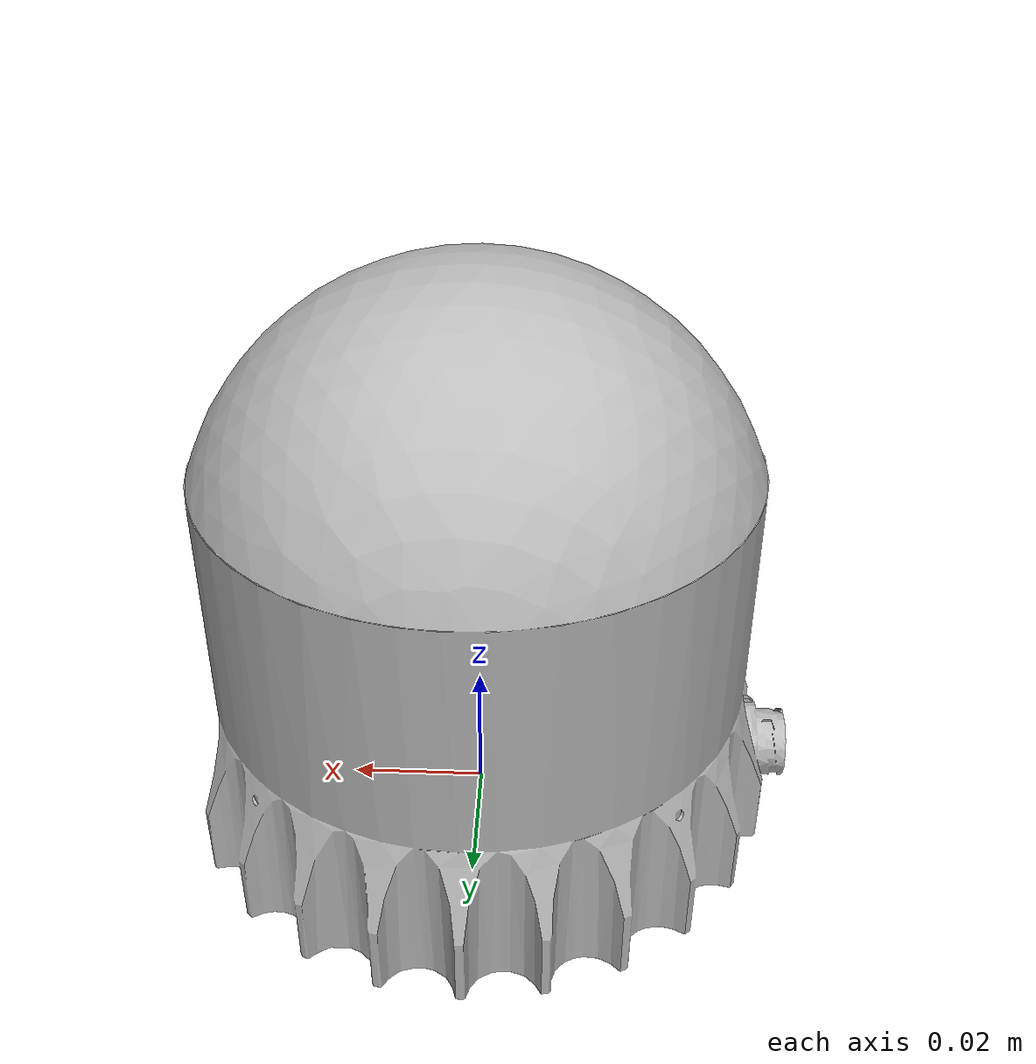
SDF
<?xml version="1.0" ?>
<sdf version='1.6'>
  <model name='osdome'>
    <link name='osdome_sensor'>
      <pose frame=''>0 0 0 0 0 0</pose>
      <inertial>
        <pose frame=''>0 0 0.04 0 -0 0</pose>
        <mass>0.47</mass>
        <inertia>
          <ixx>0.00030456</ixx>
          <ixy>0</ixy>
          <ixz>0</ixz>
          <iyy>0.00030456</iyy>
          <iyz>0</iyz>
          <izz>0.000437</izz>
        </inertia>
      </inertial>
      <collision name='osdome_sensor_fixed_joint_lump__base_collision_collision'>
        <pose frame=''>0 0 0.042635 0 -0 0</pose>
        <geometry>
          <cylinder>
            <length>0.08527</length>
            <radius>0.03600</radius>
          </cylinder>
        </geometry>
      </collision>
      <visual name='osdome_sensor_fixed_joint_lump__base_visual_visual'>
        <pose frame=''>0 0 0 0 0 0</pose>
        <geometry>
          <mesh>
            <scale>1 1 1</scale>
            <uri>model://osdome_64/meshes/osdome_64.dae</uri>
          </mesh>
        </geometry>
      </visual>
      <velocity_decay/>
      <gravity>1</gravity>
      <velocity_decay/>
      <sensor name='osdome_sensor-OSDome-64' type='gpu_ray'>
        <visualize>0</visualize>
        <update_rate>10</update_rate>
        <ray>
          <scan>
            <horizontal>
              <samples>512</samples>
              <resolution>1</resolution>
              <min_angle>-3.14159</min_angle>
              <max_angle>3.14159</max_angle>
            </horizontal>
            <vertical>
              <samples>64</samples>
              <resolution>1</resolution>
              <min_angle>0</min_angle>
              <max_angle>1.4835</max_angle>
            </vertical>
          </scan>
          <range>
            <min>0.0001</min>
            <max>40</max>
            <resolution>0.01</resolution>
          </range>
        </ray>
        <plugin name='gazebo_ros_laser_controller' filename='libgazebo_ros_ouster_gpu_laser.so'>
          <topicName>/osdome_cloud_node/points</topicName>
          <frameName>osdome_lidar</frameName>
          <min_range>0.0001</min_range>
          <max_range>40.0</max_range>
          <gaussianNoise>0.008</gaussianNoise>
        </plugin>
        <pose frame=''>0 0 0.08527 0 -0 0</pose>
      </sensor>
    </link>
    <static>0</static>
    <plugin name='imu_controller' filename='libhector_gazebo_ros_imu.so'>
      <robotNamespace>/</robotNamespace>
      <updateRate>100.0</updateRate>
      <topicName>/osdome_cloud_node/imu</topicName>
      <accelDrift>0.005 0.005 0.005</accelDrift>
      <accelGaussianNoise>0.005 0.005 0.005</accelGaussianNoise>
      <rateDrift>0.005 0.005 0.005</rateDrift>
      <rateGaussianNoise>0.005 0.005 0.005</rateGaussianNoise>
      <headingDrift>0.005</headingDrift>
      <headingGaussianNoise>0.005</headingGaussianNoise>
      <bodyName>osdome_sensor</bodyName>
      <xyzOffset>-0.006253 0.011775 -0.007645</xyzOffset>
      <rpyOffset>0 -0 0</rpyOffset>
    </plugin>
  </model>
</sdf>
